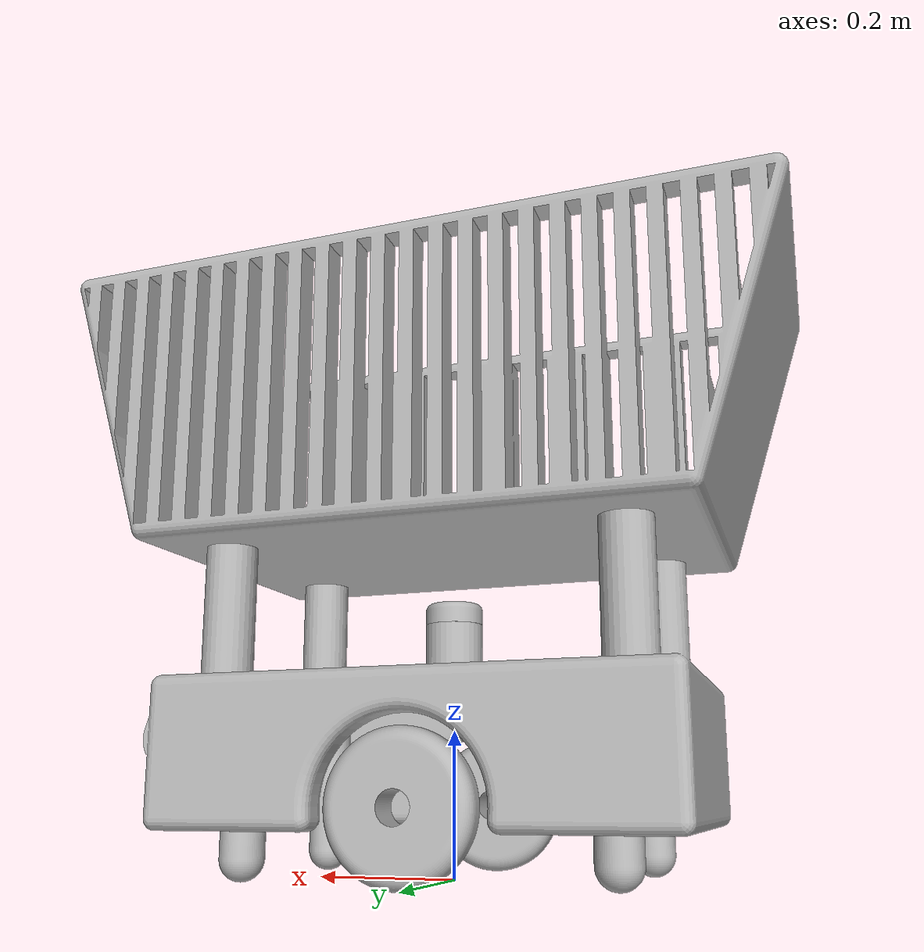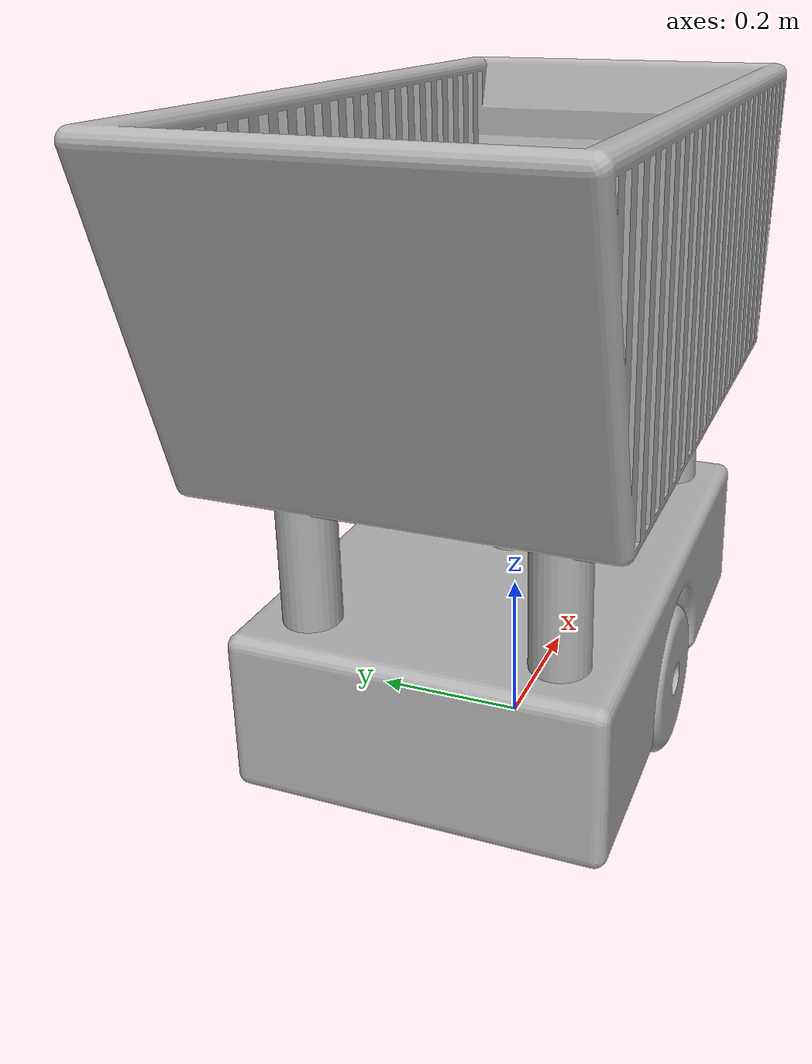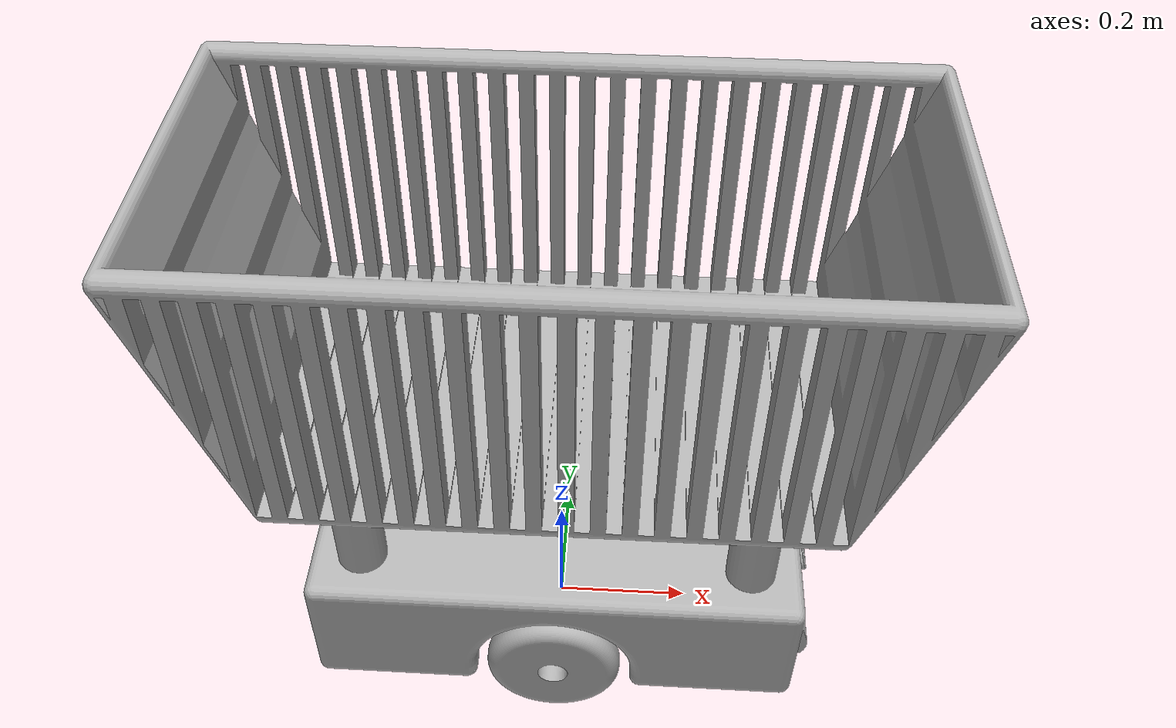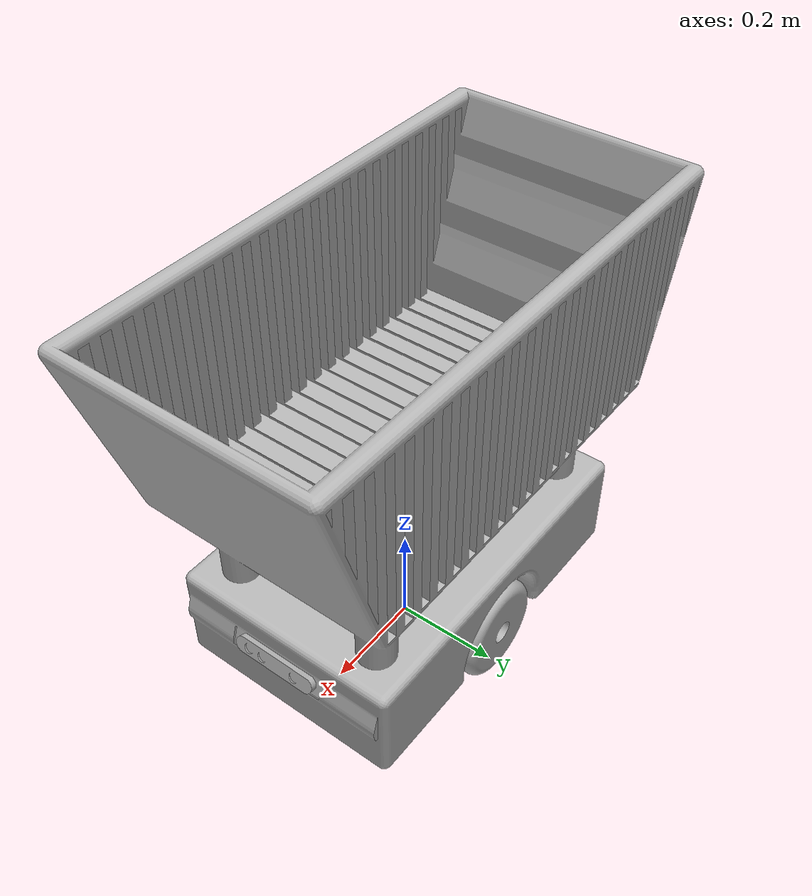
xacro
<?xml version="1.0" ?>
<robot name="teocart" xmlns:xacro="http://www.ros.org/wiki/xacro">

<xacro:include filename="$(find teocart_description)/urdf/materials.xacro" />
<xacro:include filename="$(find teocart_description)/urdf/teocart.trans" />
<xacro:include filename="$(find teocart_description)/gazebo/teocart_materials.gazebo" />
<xacro:include filename="$(find teocart_description)/gazebo/teocart_physics.gazebo" />
<xacro:include filename="$(find teocart_description)/gazebo/teocart_plugins.gazebo" />
<link name="base_link">
  <inertial>
    <origin xyz="0.000985373150554124 0.0011444340597345749 0.4127431286024428" rpy="0 0 0"/>
    <mass value="57.26708608289834"/>
    <inertia ixx="4.583669" iyy="7.340401" izz="6.097273" ixy="-4.7e-05" iyz="2.9e-05" ixz="0.012483"/>
  </inertial>
  <visual>
    <origin xyz="0 0 0" rpy="0 0 0"/>
    <geometry>
      <mesh filename="package://teocart_description/meshes/base_link.stl" scale="0.001 0.001 0.001"/>
    </geometry>
    <material name="silver"/>
  </visual>
  <collision>
    <origin xyz="0 0 0" rpy="0 0 0"/>
    <geometry>
      <mesh filename="package://teocart_description/meshes/base_link.stl" scale="0.001 0.001 0.001"/>
    </geometry>
  </collision>
</link>

<link name="Lidar_1">
  <inertial>
    <origin xyz="1.8157966345931263e-07 1.2608995146471194e-07 0.014555382495114899" rpy="0 0 0"/>
    <mass value="1.142168118236333"/>
    <inertia ixx="0.000526" iyy="0.000525" izz="0.000887" ixy="0.0" iyz="-0.0" ixz="-0.0"/>
  </inertial>
  <visual>
    <origin xyz="6.4e-05 -0.001142 -0.348303" rpy="0 0 0"/>
    <geometry>
      <mesh filename="package://teocart_description/meshes/Lidar_1.stl" scale="0.001 0.001 0.001"/>
    </geometry>
    <material name="silver"/>
  </visual>
  <collision>
    <origin xyz="6.4e-05 -0.001142 -0.348303" rpy="0 0 0"/>
    <geometry>
      <mesh filename="package://teocart_description/meshes/Lidar_1.stl" scale="0.001 0.001 0.001"/>
    </geometry>
  </collision>
</link>

<link name="front_right_caster_wheel_1">
  <inertial>
    <origin xyz="3.740591836276508e-09 -8.323675082522186e-12 -0.11619173194709467" rpy="0 0 0"/>
    <mass value="5.153050505798358"/>
    <inertia ixx="0.024413" iyy="0.024413" izz="0.002279" ixy="0.0" iyz="-0.0" ixz="-0.0"/>
  </inertial>
  <visual>
    <origin xyz="-0.251 0.13 -0.243303" rpy="0 0 0"/>
    <geometry>
      <mesh filename="package://teocart_description/meshes/front_right_caster_wheel_1.stl" scale="0.001 0.001 0.001"/>
    </geometry>
    <material name="silver"/>
  </visual>
  <collision>
    <origin xyz="-0.251 0.13 -0.243303" rpy="0 0 0"/>
    <geometry>
      <mesh filename="package://teocart_description/meshes/front_right_caster_wheel_1.stl" scale="0.001 0.001 0.001"/>
    </geometry>
  </collision>
</link>

<link name="front_left_caster_wheel_1">
  <inertial>
    <origin xyz="3.740592613432625e-09 1.9735255096797744e-09 -0.11619173194709467" rpy="0 0 0"/>
    <mass value="5.153050505798358"/>
    <inertia ixx="0.024413" iyy="0.024413" izz="0.002279" ixy="0.0" iyz="0.0" ixz="-0.0"/>
  </inertial>
  <visual>
    <origin xyz="-0.251 -0.133 -0.243303" rpy="0 0 0"/>
    <geometry>
      <mesh filename="package://teocart_description/meshes/front_left_caster_wheel_1.stl" scale="0.001 0.001 0.001"/>
    </geometry>
    <material name="silver"/>
  </visual>
  <collision>
    <origin xyz="-0.251 -0.133 -0.243303" rpy="0 0 0"/>
    <geometry>
      <mesh filename="package://teocart_description/meshes/front_left_caster_wheel_1.stl" scale="0.001 0.001 0.001"/>
    </geometry>
  </collision>
</link>

<link name="right_left_caster_wheel_1">
  <inertial>
    <origin xyz="4.058697822273416e-13 -8.323675082522186e-12 -0.11619173194709467" rpy="0 0 0"/>
    <mass value="5.153050505798358"/>
    <inertia ixx="0.024413" iyy="0.024413" izz="0.002279" ixy="-0.0" iyz="-0.0" ixz="0.0"/>
  </inertial>
  <visual>
    <origin xyz="0.25 0.13 -0.243303" rpy="0 0 0"/>
    <geometry>
      <mesh filename="package://teocart_description/meshes/right_left_caster_wheel_1.stl" scale="0.001 0.001 0.001"/>
    </geometry>
    <material name="silver"/>
  </visual>
  <collision>
    <origin xyz="0.25 0.13 -0.243303" rpy="0 0 0"/>
    <geometry>
      <mesh filename="package://teocart_description/meshes/right_left_caster_wheel_1.stl" scale="0.001 0.001 0.001"/>
    </geometry>
  </collision>
</link>

<link name="rear_left_caster_wheel_1">
  <inertial>
    <origin xyz="4.066191827689636e-13 1.9735255096797744e-09 -0.11619173194709462" rpy="0 0 0"/>
    <mass value="5.153050505798358"/>
    <inertia ixx="0.024413" iyy="0.024413" izz="0.002279" ixy="-0.0" iyz="0.0" ixz="0.0"/>
  </inertial>
  <visual>
    <origin xyz="0.25 -0.133 -0.243303" rpy="0 0 0"/>
    <geometry>
      <mesh filename="package://teocart_description/meshes/rear_left_caster_wheel_1.stl" scale="0.001 0.001 0.001"/>
    </geometry>
    <material name="silver"/>
  </visual>
  <collision>
    <origin xyz="0.25 -0.133 -0.243303" rpy="0 0 0"/>
    <geometry>
      <mesh filename="package://teocart_description/meshes/rear_left_caster_wheel_1.stl" scale="0.001 0.001 0.001"/>
    </geometry>
  </collision>
</link>

<link name="camera_1">
  <inertial>
    <origin xyz="0.005476548100343703 0.0005884720498845492 0.001825852987195009" rpy="0 0 0"/>
    <mass value="0.4400307041952206"/>
    <inertia ixx="0.001023" iyy="3.8e-05" izz="0.001001" ixy="-1e-06" iyz="-0.0" ixz="8e-06"/>
  </inertial>
  <visual>
    <origin xyz="-0.352673 0.0025 -0.20117" rpy="0 0 0"/>
    <geometry>
      <mesh filename="package://teocart_description/meshes/camera_1.stl" scale="0.001 0.001 0.001"/>
    </geometry>
    <material name="silver"/>
  </visual>
  <collision>
    <origin xyz="-0.352673 0.0025 -0.20117" rpy="0 0 0"/>
    <geometry>
      <mesh filename="package://teocart_description/meshes/camera_1.stl" scale="0.001 0.001 0.001"/>
    </geometry>
  </collision>
</link>

<link name="left_wheel_1">
  <inertial>
    <origin xyz="1.439368177707598e-07 -0.024999873910054232 -5.130204498715596e-08" rpy="0 0 0"/>
    <mass value="10.366820372703833"/>
    <inertia ixx="0.026511" iyy="0.049057" izz="0.026511" ixy="0.0" iyz="-0.0" ixz="0.0"/>
  </inertial>
  <visual>
    <origin xyz="-2.3e-05 -0.226142 -0.098303" rpy="0 0 0"/>
    <geometry>
      <mesh filename="package://teocart_description/meshes/left_wheel_1.stl" scale="0.001 0.001 0.001"/>
    </geometry>
    <material name="silver"/>
  </visual>
  <collision>
    <origin xyz="-2.3e-05 -0.226142 -0.098303" rpy="0 0 0"/>
    <geometry>
      <mesh filename="package://teocart_description/meshes/left_wheel_1.stl" scale="0.001 0.001 0.001"/>
    </geometry>
  </collision>
</link>

<link name="right_wheel_1">
  <inertial>
    <origin xyz="1.439368168411208e-07 0.025000126089953445 -5.130204371039948e-08" rpy="0 0 0"/>
    <mass value="10.366820372703833"/>
    <inertia ixx="0.026511" iyy="0.049057" izz="0.026511" ixy="0.0" iyz="-0.0" ixz="0.0"/>
  </inertial>
  <visual>
    <origin xyz="-2.3e-05 0.223858 -0.098303" rpy="0 0 0"/>
    <geometry>
      <mesh filename="package://teocart_description/meshes/right_wheel_1.stl" scale="0.001 0.001 0.001"/>
    </geometry>
    <material name="silver"/>
  </visual>
  <collision>
    <origin xyz="-2.3e-05 0.223858 -0.098303" rpy="0 0 0"/>
    <geometry>
      <mesh filename="package://teocart_description/meshes/right_wheel_1.stl" scale="0.001 0.001 0.001"/>
    </geometry>
  </collision>
</link>

<joint name="lidar_joint" type="fixed">
  <origin xyz="-6.4e-05 0.001142 0.348303" rpy="0 0 0"/>
  <parent link="base_link"/>
  <child link="Lidar_1"/>
</joint>

<joint name="Rigid 10" type="fixed">
  <origin xyz="0.251 -0.13 0.243303" rpy="0 0 0"/>
  <parent link="base_link"/>
  <child link="front_right_caster_wheel_1"/>
</joint>

<joint name="Rigid 11" type="fixed">
  <origin xyz="0.251 0.133 0.243303" rpy="0 0 0"/>
  <parent link="base_link"/>
  <child link="front_left_caster_wheel_1"/>
</joint>

<joint name="Rigid 12" type="fixed">
  <origin xyz="-0.25 -0.13 0.243303" rpy="0 0 0"/>
  <parent link="base_link"/>
  <child link="right_left_caster_wheel_1"/>
</joint>

<joint name="Rigid 13" type="fixed">
  <origin xyz="-0.25 0.133 0.243303" rpy="0 0 0"/>
  <parent link="base_link"/>
  <child link="rear_left_caster_wheel_1"/>
</joint>

<joint name="Rigid 14" type="fixed">
  <origin xyz="0.352673 -0.0025 0.20117" rpy="0 0 0"/>
  <parent link="base_link"/>
  <child link="camera_1"/>
</joint>

<joint name="left_motor" type="continuous">
  <origin xyz="2.3e-05 0.226142 0.098303" rpy="0 0 0"/>
  <parent link="base_link"/>
  <child link="left_wheel_1"/>
  <axis xyz="0.0 1.0 -0.0"/>
</joint>

<joint name="right_motor" type="continuous">
  <origin xyz="2.3e-05 -0.223858 0.098303" rpy="0 0 0"/>
  <parent link="base_link"/>
  <child link="right_wheel_1"/>
  <axis xyz="-0.0 1.0 0.0"/>
</joint>

</robot>

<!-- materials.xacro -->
<robot name="teocart" xmlns:xacro="http://www.ros.org/wiki/xacro" >

<material name="silver">
  <color rgba="0.700 0.700 0.700 1.000"/>
</material>

</robot>

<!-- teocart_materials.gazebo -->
<robot name="teocart" xmlns:xacro="http://www.ros.org/wiki/xacro" >

<xacro:property name="grey" value="Gazebo/Grey" />
<xacro:property name="blue" value="Gazebo/Blue" />
<xacro:property name="black" value="Gazebo/Black" />
<xacro:property name="silver" value="Gazebo/DarkSilver" />
<xacro:property name="red" value="Gazebo/Red" />

<gazebo reference="base_link">
  <material>${silver}</material>

</gazebo>

<gazebo reference="Lidar_1">
  <material>${blue}</material>

</gazebo>

<gazebo reference="front_right_caster_wheel_1">
  <material>${grey}</material>

</gazebo>

<gazebo reference="front_left_caster_wheel_1">
  <material>${grey}</material>

</gazebo>

<gazebo reference="right_left_caster_wheel_1">
  <material>${grey}</material>

</gazebo>

<gazebo reference="rear_left_caster_wheel_1">
  <material>${grey}</material>

</gazebo>

<gazebo reference="camera_1">
  <material>${red}</material>

</gazebo>

<gazebo reference="left_wheel_1">
  <material>${black}</material>

</gazebo>

<gazebo reference="right_wheel_1">
  <material>${black}</material>

</gazebo>

</robot>
